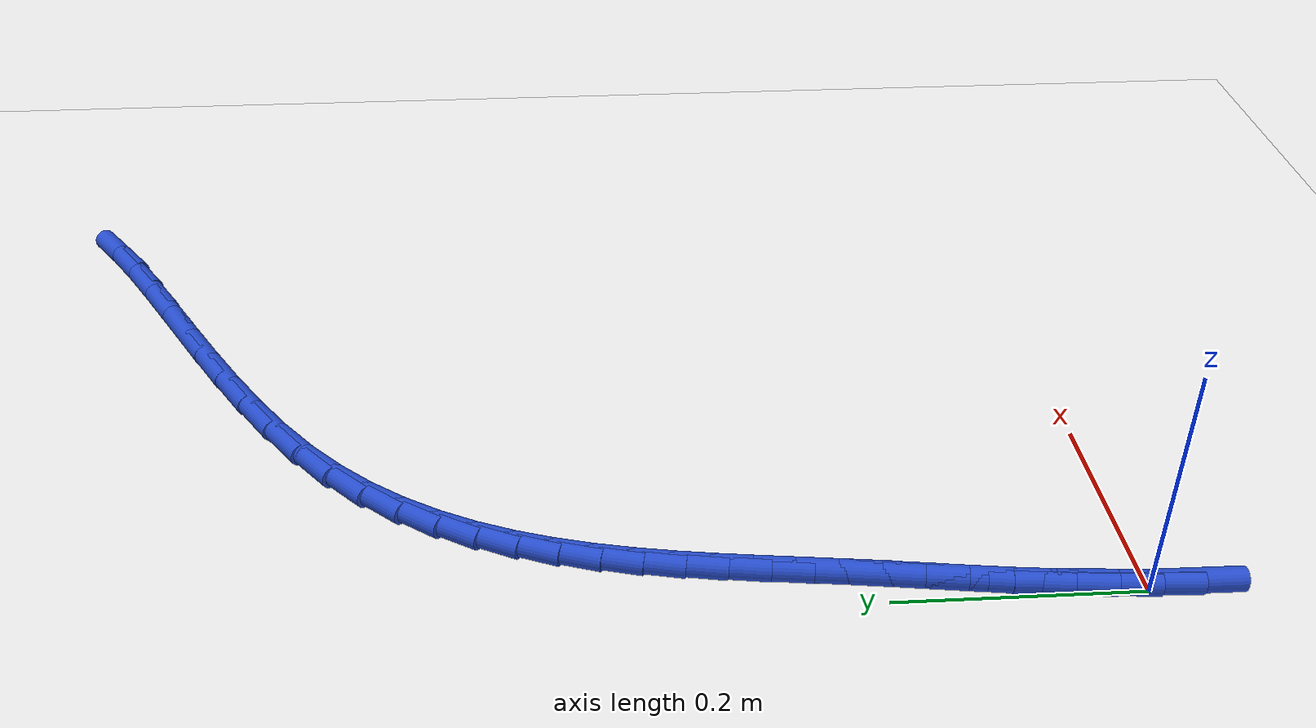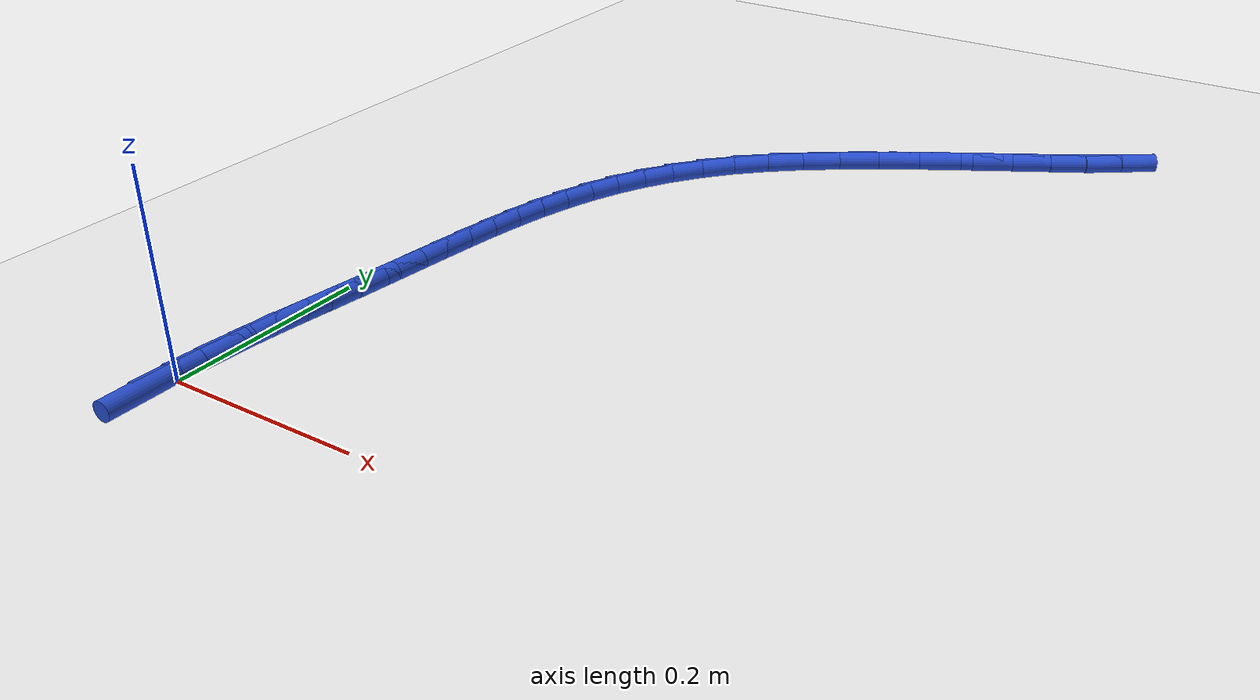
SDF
<sdf version="1.6">
 <world name="default">
  <model name="ground_plane">
   <static>1</static>
   <link name="link">
    <collision name="collision">
     <geometry><plane><normal>0 0 1</normal><size>100 100</size></plane></geometry>
     <surface><friction><ode><mu>100</mu><mu2>50</mu2></ode></friction></surface>
    </collision>
    <visual name="visual">
     <cast_shadows>0</cast_shadows>
     <geometry><plane><normal>0 0 1</normal><size>100 100</size></plane></geometry>
     <material>
      <script><uri>file://media/materials/scripts/gazebo.material</uri><name>Gazebo/WhiteGlow</name></script>
     </material>
    </visual>
   </link>
  </model>
  <model name="line">
   <link name="link_0">
    <pose>-1.474514954580286e-17 -7.632783294297951e-17 0.01 0 1.57 1.522252228233526</pose>
    <collision name="collision">
     <geometry><cylinder><radius>0.01</radius><length>0.08</length></cylinder></geometry>
    </collision>
    <visual name="visual">
     <material>
      <script><name>Gazebo/Blue</name><uri>file://media/materials/scripts/gazebo.material</uri></script>
     </material>
     <geometry><cylinder><radius>0.01</radius><length>0.08</length></cylinder></geometry>
    </visual>
   </link>
   <link name="link_1">
    <pose>0.001594486590139592 0.03282034182620537 0.01 0 1.57 1.486663738809793</pose>
    <collision name="collision">
     <geometry><cylinder><radius>0.01</radius><length>0.08</length></cylinder></geometry>
    </collision>
    <visual name="visual">
     <material>
      <script><name>Gazebo/Blue</name><uri>file://media/materials/scripts/gazebo.material</uri></script>
     </material>
     <geometry><cylinder><radius>0.01</radius><length>0.08</length></cylinder></geometry>
    </visual>
   </link>
   <link name="link_2">
    <pose>0.0043560150522412204 0.0655663896549546 0.01 0 1.57 1.4596301122428685</pose>
    <collision name="collision">
     <geometry><cylinder><radius>0.01</radius><length>0.08</length></cylinder></geometry>
    </collision>
    <visual name="visual">
     <material>
      <script><name>Gazebo/Blue</name><uri>file://media/materials/scripts/gazebo.material</uri></script>
     </material>
     <geometry><cylinder><radius>0.01</radius><length>0.08</length></cylinder></geometry>
    </visual>
   </link>
   <link name="link_3">
    <pose>0.008004385153682859 0.09825014124045076 0.01 0 1.57 1.4411397650320492</pose>
    <collision name="collision">
     <geometry><cylinder><radius>0.01</radius><length>0.08</length></cylinder></geometry>
    </collision>
    <visual name="visual">
     <material>
      <script><name>Gazebo/Blue</name><uri>file://media/materials/scripts/gazebo.material</uri></script>
     </material>
     <geometry><cylinder><radius>0.01</radius><length>0.08</length></cylinder></geometry>
    </visual>
   </link>
   <link name="link_4">
    <pose>0.012259396661842493 0.13088359433689703 0.01 0 1.57 1.43115486098183</pose>
    <collision name="collision">
     <geometry><cylinder><radius>0.01</radius><length>0.08</length></cylinder></geometry>
    </collision>
    <visual name="visual">
     <material>
      <script><name>Gazebo/Blue</name><uri>file://media/materials/scripts/gazebo.material</uri></script>
     </material>
     <geometry><cylinder><radius>0.01</radius><length>0.08</length></cylinder></geometry>
    </visual>
   </link>
   <link name="link_5">
    <pose>0.016840849344098123 0.16347874669849666 0.01 0 1.57 1.4296515797149136</pose>
    <collision name="collision">
     <geometry><cylinder><radius>0.01</radius><length>0.08</length></cylinder></geometry>
    </collision>
    <visual name="visual">
     <material>
      <script><name>Gazebo/Blue</name><uri>file://media/materials/scripts/gazebo.material</uri></script>
     </material>
     <geometry><cylinder><radius>0.01</radius><length>0.08</length></cylinder></geometry>
    </visual>
   </link>
   <link name="link_6">
    <pose>0.021468542967827735 0.1960475960794527 0.01 0 1.57 1.436621249894222</pose>
    <collision name="collision">
     <geometry><cylinder><radius>0.01</radius><length>0.08</length></cylinder></geometry>
    </collision>
    <visual name="visual">
     <material>
      <script><name>Gazebo/Blue</name><uri>file://media/materials/scripts/gazebo.material</uri></script>
     </material>
     <geometry><cylinder><radius>0.01</radius><length>0.08</length></cylinder></geometry>
    </visual>
   </link>
   <link name="link_7">
    <pose>0.025862943481214845 0.2286020628535499 0.01 0 1.57 1.4469512849292223</pose>
    <collision name="collision">
     <geometry><cylinder><radius>0.01</radius><length>0.08</length></cylinder></geometry>
    </collision>
    <visual name="visual">
     <material>
      <script><name>Gazebo/Blue</name><uri>file://media/materials/scripts/gazebo.material</uri></script>
     </material>
     <geometry><cylinder><radius>0.01</radius><length>0.08</length></cylinder></geometry>
    </visual>
   </link>
   <link name="link_8">
    <pose>0.029912654618215108 0.26113453730283015 0.01 0 1.57 1.4486952721358533</pose>
    <collision name="collision">
     <geometry><cylinder><radius>0.01</radius><length>0.08</length></cylinder></geometry>
    </collision>
    <visual name="visual">
     <material>
      <script><name>Gazebo/Blue</name><uri>file://media/materials/scripts/gazebo.material</uri></script>
     </material>
     <geometry><cylinder><radius>0.01</radius><length>0.08</length></cylinder></geometry>
    </visual>
   </link>
   <link name="link_9">
    <pose>0.0338955813603054 0.2935921903135608 0.01 0 1.57 1.4400941703268968</pose>
    <collision name="collision">
     <geometry><cylinder><radius>0.01</radius><length>0.08</length></cylinder></geometry>
    </collision>
    <visual name="visual">
     <material>
      <script><name>Gazebo/Blue</name><uri>file://media/materials/scripts/gazebo.material</uri></script>
     </material>
     <geometry><cylinder><radius>0.01</radius><length>0.08</length></cylinder></geometry>
    </visual>
   </link>
   <link name="link_10">
    <pose>0.03814457111847164 0.32591581091867433 0.01 0 1.57 1.4210437590948073</pose>
    <collision name="collision">
     <geometry><cylinder><radius>0.01</radius><length>0.08</length></cylinder></geometry>
    </collision>
    <visual name="visual">
     <material>
      <script><name>Gazebo/Blue</name><uri>file://media/materials/scripts/gazebo.material</uri></script>
     </material>
     <geometry><cylinder><radius>0.01</radius><length>0.08</length></cylinder></geometry>
    </visual>
   </link>
   <link name="link_11">
    <pose>0.042992471303699764 0.358046188151103 0.01 0 1.57 1.3914386838464063</pose>
    <collision name="collision">
     <geometry><cylinder><radius>0.01</radius><length>0.08</length></cylinder></geometry>
    </collision>
    <visual name="visual">
     <material>
      <script><name>Gazebo/Blue</name><uri>file://media/materials/scripts/gazebo.material</uri></script>
     </material>
     <geometry><cylinder><radius>0.01</radius><length>0.08</length></cylinder></geometry>
    </visual>
   </link>
   <link name="link_12">
    <pose>0.0487721293269757 0.38992411104377905 0.01 0 1.57 1.351235805734445</pose>
    <collision name="collision">
     <geometry><cylinder><radius>0.01</radius><length>0.08</length></cylinder></geometry>
    </collision>
    <visual name="visual">
     <material>
      <script><name>Gazebo/Blue</name><uri>file://media/materials/scripts/gazebo.material</uri></script>
     </material>
     <geometry><cylinder><radius>0.01</radius><length>0.08</length></cylinder></geometry>
    </visual>
   </link>
   <link name="link_13">
    <pose>0.055816392599285385 0.4214903686296349 0.01 0 1.57 1.3005539609662147</pose>
    <collision name="collision">
     <geometry><cylinder><radius>0.01</radius><length>0.08</length></cylinder></geometry>
    </collision>
    <visual name="visual">
     <material>
      <script><name>Gazebo/Blue</name><uri>file://media/materials/scripts/gazebo.material</uri></script>
     </material>
     <geometry><cylinder><radius>0.01</radius><length>0.08</length></cylinder></geometry>
    </visual>
   </link>
   <link name="link_14">
    <pose>0.06445810853161471 0.4526857499416027 0.01 0 1.57 1.2398035609341025</pose>
    <collision name="collision">
     <geometry><cylinder><radius>0.01</radius><length>0.08</length></cylinder></geometry>
    </collision>
    <visual name="visual">
     <material>
      <script><name>Gazebo/Blue</name><uri>file://media/materials/scripts/gazebo.material</uri></script>
     </material>
     <geometry><cylinder><radius>0.01</radius><length>0.08</length></cylinder></geometry>
    </visual>
   </link>
   <link name="link_15">
    <pose>0.07503012453494966 0.483451044012615 0.01 0 1.57 1.1698250328970665</pose>
    <collision name="collision">
     <geometry><cylinder><radius>0.01</radius><length>0.08</length></cylinder></geometry>
    </collision>
    <visual name="visual">
     <material>
      <script><name>Gazebo/Blue</name><uri>file://media/materials/scripts/gazebo.material</uri></script>
     </material>
     <geometry><cylinder><radius>0.01</radius><length>0.08</length></cylinder></geometry>
    </visual>
   </link>
   <link name="link_16">
    <pose>0.08786528802027616 0.5137270398756042 0.01 0 1.57 1.0919958025029497</pose>
    <collision name="collision">
     <geometry><cylinder><radius>0.01</radius><length>0.08</length></cylinder></geometry>
    </collision>
    <visual name="visual">
     <material>
      <script><name>Gazebo/Blue</name><uri>file://media/materials/scripts/gazebo.material</uri></script>
     </material>
     <geometry><cylinder><radius>0.01</radius><length>0.08</length></cylinder></geometry>
    </visual>
   </link>
   <link name="link_17">
    <pose>0.10329644639858007 0.5434545265635022 0.01 0 1.57 1.0082520261159904</pose>
    <collision name="collision">
     <geometry><cylinder><radius>0.01</radius><length>0.08</length></cylinder></geometry>
    </collision>
    <visual name="visual">
     <material>
      <script><name>Gazebo/Blue</name><uri>file://media/materials/scripts/gazebo.material</uri></script>
     </material>
     <geometry><cylinder><radius>0.01</radius><length>0.08</length></cylinder></geometry>
    </visual>
   </link>
   <link name="link_18">
    <pose>0.12165644708084737 0.5725742931092419 0.01 0 1.57 0.9209807847451601</pose>
    <collision name="collision">
     <geometry><cylinder><radius>0.01</radius><length>0.08</length></cylinder></geometry>
    </collision>
    <visual name="visual">
     <material>
      <script><name>Gazebo/Blue</name><uri>file://media/materials/scripts/gazebo.material</uri></script>
     </material>
     <geometry><cylinder><radius>0.01</radius><length>0.08</length></cylinder></geometry>
    </visual>
   </link>
   <link name="link_19">
    <pose>0.14327813747806398 0.6010271285457549 0.01 0 1.57 0.8327810190407866</pose>
    <collision name="collision">
     <geometry><cylinder><radius>0.01</radius><length>0.08</length></cylinder></geometry>
    </collision>
    <visual name="visual">
     <material>
      <script><name>Gazebo/Blue</name><uri>file://media/materials/scripts/gazebo.material</uri></script>
     </material>
     <geometry><cylinder><radius>0.01</radius><length>0.08</length></cylinder></geometry>
    </visual>
   </link>
   <link name="link_20">
    <pose>0.16849436500121587 0.6287538219059743 0.01 0 1.57 0.746151612944165</pose>
    <collision name="collision">
     <geometry><cylinder><radius>0.01</radius><length>0.08</length></cylinder></geometry>
    </collision>
    <visual name="visual">
     <material>
      <script><name>Gazebo/Blue</name><uri>file://media/materials/scripts/gazebo.material</uri></script>
     </material>
     <geometry><cylinder><radius>0.01</radius><length>0.08</length></cylinder></geometry>
    </visual>
   </link>
   <link name="link_21">
    <pose>0.19763797706098726 0.6556951622228544 0.01 0 1.57 0.6666109694723344</pose>
    <collision name="collision">
     <geometry><cylinder><radius>0.01</radius><length>0.08</length></cylinder></geometry>
    </collision>
    <visual name="visual">
     <material>
      <script><name>Gazebo/Blue</name><uri>file://media/materials/scripts/gazebo.material</uri></script>
     </material>
     <geometry><cylinder><radius>0.01</radius><length>0.08</length></cylinder></geometry>
    </visual>
   </link>
   <link name="link_22">
    <pose>0.23082832609378992 0.6818077593660807 0.01 0 1.57 0.6061113140481886</pose>
    <collision name="collision">
     <geometry><cylinder><radius>0.01</radius><length>0.08</length></cylinder></geometry>
    </collision>
    <visual name="visual">
     <material>
      <script><name>Gazebo/Blue</name><uri>file://media/materials/scripts/gazebo.material</uri></script>
     </material>
     <geometry><cylinder><radius>0.01</radius><length>0.08</length></cylinder></geometry>
    </visual>
   </link>
   <link name="link_23">
    <pose>0.2673336578916968 0.7071112936326716 0.01 0 1.57 0.5628801227923164</pose>
    <collision name="collision">
     <geometry><cylinder><radius>0.01</radius><length>0.08</length></cylinder></geometry>
    </collision>
    <visual name="visual">
     <material>
      <script><name>Gazebo/Blue</name><uri>file://media/materials/scripts/gazebo.material</uri></script>
     </material>
     <geometry><cylinder><radius>0.01</radius><length>0.08</length></cylinder></geometry>
    </visual>
   </link>
   <link name="link_24">
    <pose>0.30621015748373703 0.7316411598755518 0.01 0 1.57 0.5332608298058857</pose>
    <collision name="collision">
     <geometry><cylinder><radius>0.01</radius><length>0.08</length></cylinder></geometry>
    </collision>
    <visual name="visual">
     <material>
      <script><name>Gazebo/Blue</name><uri>file://media/materials/scripts/gazebo.material</uri></script>
     </material>
     <geometry><cylinder><radius>0.01</radius><length>0.08</length></cylinder></geometry>
    </visual>
   </link>
   <link name="link_25">
    <pose>0.34651400989894005 0.7554327529476479 0.01 0 1.57 0.51510090493418</pose>
    <collision name="collision">
     <geometry><cylinder><radius>0.01</radius><length>0.08</length></cylinder></geometry>
    </collision>
    <visual name="visual">
     <material>
      <script><name>Gazebo/Blue</name><uri>file://media/materials/scripts/gazebo.material</uri></script>
     </material>
     <geometry><cylinder><radius>0.01</radius><length>0.08</length></cylinder></geometry>
    </visual>
   </link>
   <link name="link_26">
    <pose>0.38730140016633474 0.7785214677018841 0.01 0 1.57 0.5074258716123596</pose>
    <collision name="collision">
     <geometry><cylinder><radius>0.01</radius><length>0.08</length></cylinder></geometry>
    </collision>
    <visual name="visual">
     <material>
      <script><name>Gazebo/Blue</name><uri>file://media/materials/scripts/gazebo.material</uri></script>
     </material>
     <geometry><cylinder><radius>0.01</radius><length>0.08</length></cylinder></geometry>
    </visual>
   </link>
   <link name="link_27">
    <pose>0.4276285133149505 0.8009426989911869 0.01 0 1.57 0.5103367497982298</pose>
    <collision name="collision">
     <geometry><cylinder><radius>0.01</radius><length>0.08</length></cylinder></geometry>
    </collision>
    <visual name="visual">
     <material>
      <script><name>Gazebo/Blue</name><uri>file://media/materials/scripts/gazebo.material</uri></script>
     </material>
     <geometry><cylinder><radius>0.01</radius><length>0.08</length></cylinder></geometry>
    </visual>
   </link>
   <link name="link_28">
    <pose>0.46655153437381647 0.8227318416684809 0.01 0 1.57 0.5251516550084752</pose>
    <collision name="collision">
     <geometry><cylinder><radius>0.01</radius><length>0.08</length></cylinder></geometry>
    </collision>
    <visual name="visual">
     <material>
      <script><name>Gazebo/Blue</name><uri>file://media/materials/scripts/gazebo.material</uri></script>
     </material>
     <geometry><cylinder><radius>0.01</radius><length>0.08</length></cylinder></geometry>
    </visual>
   </link>
   <link name="link_29">
    <pose>0.5031266483719617 0.8439242905866919 0.01 0 1.57 0.5548969094050655</pose>
    <collision name="collision">
     <geometry><cylinder><radius>0.01</radius><length>0.08</length></cylinder></geometry>
    </collision>
    <visual name="visual">
     <material>
      <script><name>Gazebo/Blue</name><uri>file://media/materials/scripts/gazebo.material</uri></script>
     </material>
     <geometry><cylinder><radius>0.01</radius><length>0.08</length></cylinder></geometry>
    </visual>
   </link>
   <link name="link_30">
    <pose>0.5364100403384159 0.8645554405987456 0.01 0 1.57 0.6054327755974536</pose>
    <collision name="collision">
     <geometry><cylinder><radius>0.01</radius><length>0.08</length></cylinder></geometry>
    </collision>
    <visual name="visual">
     <material>
      <script><name>Gazebo/Blue</name><uri>file://media/materials/scripts/gazebo.material</uri></script>
     </material>
     <geometry><cylinder><radius>0.01</radius><length>0.08</length></cylinder></geometry>
    </visual>
   </link>
   <link name="link_279">
    <pose>-0.00020111090528378674 -0.03289396816852819 0.01 0 1.57 1.5646824885838555</pose>
    <collision name="collision">
     <geometry><cylinder><radius>0.01</radius><length>0.08</length></cylinder></geometry>
    </collision>
    <visual name="visual">
     <material>
      <script><name>Gazebo/Blue</name><uri>file://media/materials/scripts/gazebo.material</uri></script>
     </material>
     <geometry><cylinder><radius>0.01</radius><length>0.08</length></cylinder></geometry>
    </visual>
   </link>
   <link name="link_280">
    <pose>-1.734723475976807e-18 -3.0531133177191805e-16 0.01 0 1.57 1.5205956335333937</pose>
    <collision name="collision">
     <geometry><cylinder><radius>0.01</radius><length>0.08</length></cylinder></geometry>
    </collision>
    <visual name="visual">
     <material>
      <script><name>Gazebo/Blue</name><uri>file://media/materials/scripts/gazebo.material</uri></script>
     </material>
     <geometry><cylinder><radius>0.01</radius><length>0.08</length></cylinder></geometry>
    </visual>
   </link>
   <link name="link_281">
    <pose>0.0016483530098678001 0.032807676416868214 0.01 0 1.57 1.474983911740389</pose>
    <collision name="collision">
     <geometry><cylinder><radius>0.01</radius><length>0.08</length></cylinder></geometry>
    </collision>
    <visual name="visual">
     <material>
      <script><name>Gazebo/Blue</name><uri>file://media/materials/scripts/gazebo.material</uri></script>
     </material>
     <geometry><cylinder><radius>0.01</radius><length>0.08</length></cylinder></geometry>
    </visual>
   </link>
   <link name="link_282">
    <pose>0.004786946410066855 0.06546506638025956 0.01 0 1.57 1.4978040845527725</pose>
    <collision name="collision">
     <geometry><cylinder><radius>0.01</radius><length>0.08</length></cylinder></geometry>
    </collision>
    <visual name="visual">
     <material>
      <script><name>Gazebo/Blue</name><uri>file://media/materials/scripts/gazebo.material</uri></script>
     </material>
     <geometry><cylinder><radius>0.01</radius><length>0.08</length></cylinder></geometry>
    </visual>
   </link>
  </model>
 </world>
</sdf>
